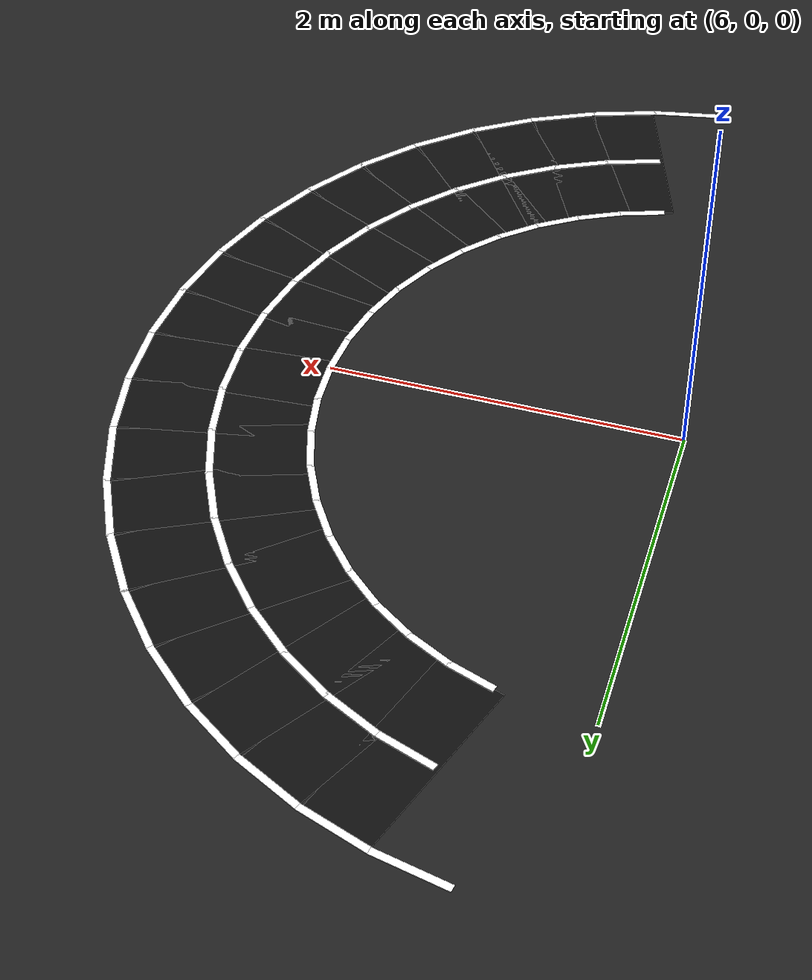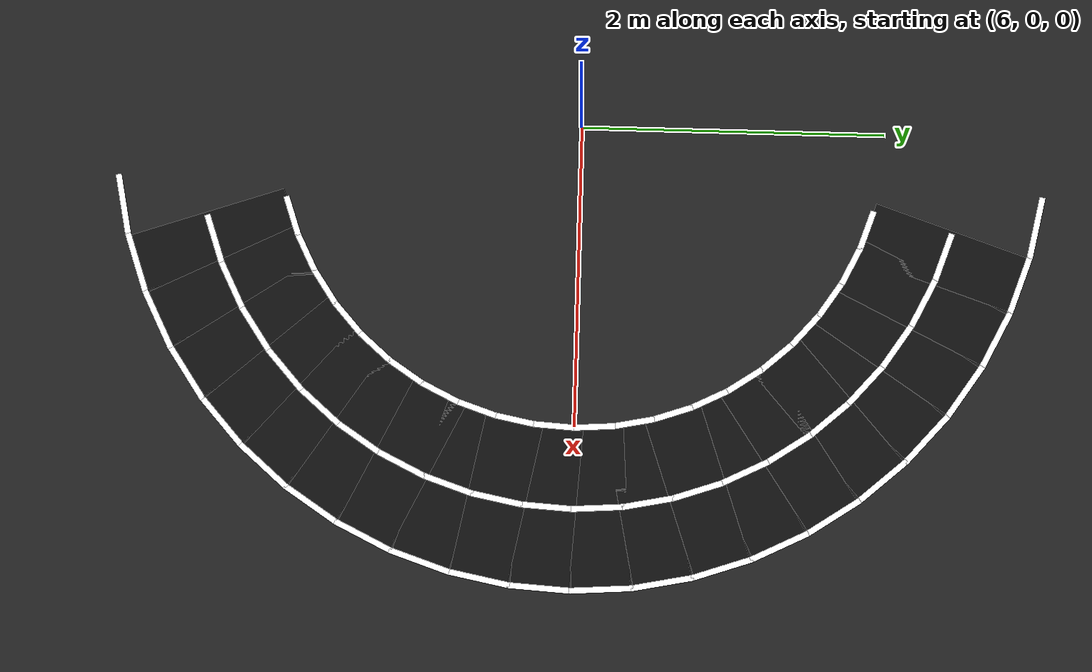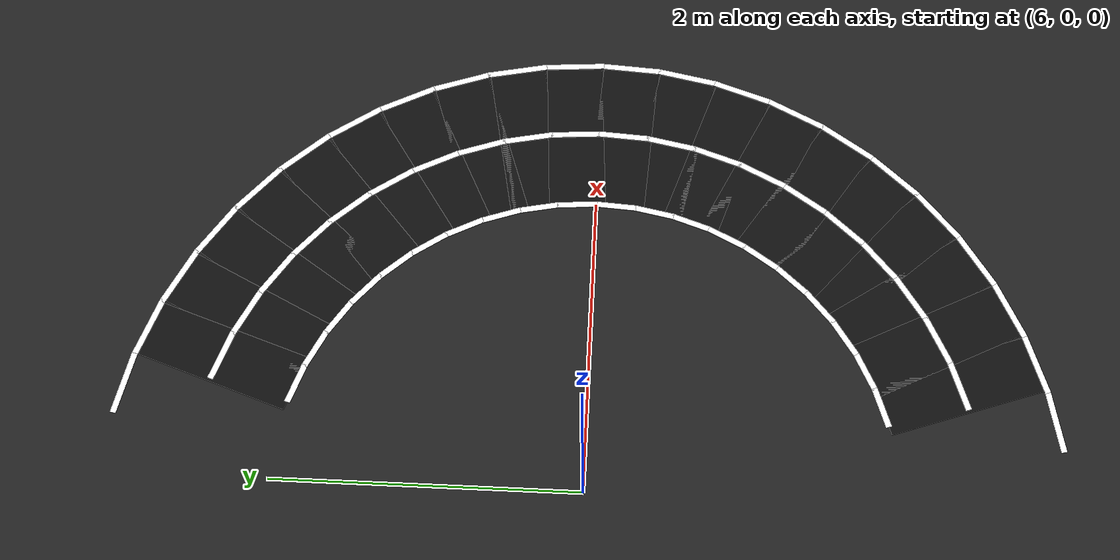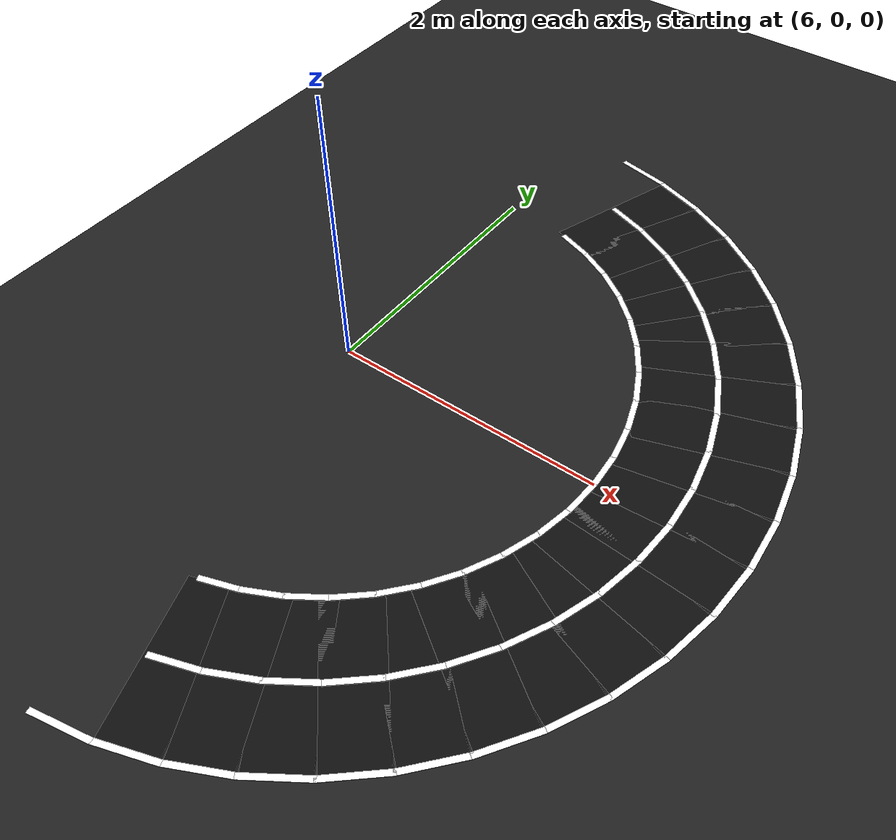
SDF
<sdf version="1.6">
 <world name="oval_lane_world">
  <model name="ground_plane">
   <static>true</static>
   <link name="link">
    <collision name="collision">
     <geometry><plane><normal>0 0 1</normal><size>200 200</size></plane></geometry>
     <surface><friction><ode><mu>1.0</mu><mu2>1.0</mu2></ode></friction></surface>
    </collision>
    <visual name="visual">
     <geometry><plane><normal>0 0 1</normal><size>200 200</size></plane></geometry>
     <material><ambient>0.10 0.10 0.10 1</ambient><diffuse>0.12 0.12 0.12 1</diffuse></material>
    </visual>
   </link>
  </model>
  <model name="cl_r_2_1">
   <static>true</static>
   <pose>6.59854 3.00905 0.00700 0.0 0.0 -0.19635</pose>
   <link name="link">
    <visual name="visual">
     <geometry><box><size>0.41737 0.04000 0.00400</size></box></geometry>
     <material>
      <ambient>1.000 1.000 1.000 1</ambient>
      <diffuse>1.000 1.000 1.000 1</diffuse>
      <specular>0.05 0.05 0.05 1</specular>
     </material>
    </visual>
   </link>
  </model>
  <model name="road_r_2">
   <static>true</static>
   <pose>6.81453 2.39952 0.00250 0.0 0.0 -0.32725</pose>
   <link name="link">
    <visual name="visual">
     <geometry><box><size>0.38284 1.06800 0.00500</size></box></geometry>
     <material>
      <ambient>0.030 0.030 0.030 1</ambient>
      <diffuse>0.050 0.050 0.050 1</diffuse>
      <specular>0.05 0.05 0.05 1</specular>
     </material>
    </visual>
   </link>
  </model>
  <model name="cl_r_0_2">
   <static>true</static>
   <pose>6.64288 1.89386 0.00700 0.0 0.0 -0.32725</pose>
   <link name="link">
    <visual name="visual">
     <geometry><box><size>0.27208 0.04000 0.00400</size></box></geometry>
     <material>
      <ambient>1.000 1.000 1.000 1</ambient>
      <diffuse>1.000 1.000 1.000 1</diffuse>
      <specular>0.05 0.05 0.05 1</specular>
     </material>
    </visual>
   </link>
  </model>
  <model name="cl_r_1_2">
   <static>true</static>
   <pose>6.81453 2.39952 0.00700 0.0 0.0 -0.32725</pose>
   <link name="link">
    <visual name="visual">
     <geometry><box><size>0.34472 0.04000 0.00400</size></box></geometry>
     <material>
      <ambient>1.000 1.000 1.000 1</ambient>
      <diffuse>1.000 1.000 1.000 1</diffuse>
      <specular>0.05 0.05 0.05 1</specular>
     </material>
    </visual>
   </link>
  </model>
  <model name="cl_r_2_2">
   <static>true</static>
   <pose>6.98618 2.90518 0.00700 0.0 0.0 -0.32725</pose>
   <link name="link">
    <visual name="visual">
     <geometry><box><size>0.41737 0.04000 0.00400</size></box></geometry>
     <material>
      <ambient>1.000 1.000 1.000 1</ambient>
      <diffuse>1.000 1.000 1.000 1</diffuse>
      <specular>0.05 0.05 0.05 1</specular>
     </material>
    </visual>
   </link>
  </model>
  <model name="road_r_3">
   <static>true</static>
   <pose>7.12076 2.27268 0.00250 0.0 0.0 -0.45815</pose>
   <link name="link">
    <visual name="visual">
     <geometry><box><size>0.38284 1.06800 0.00500</size></box></geometry>
     <material>
      <ambient>0.030 0.030 0.030 1</ambient>
      <diffuse>0.050 0.050 0.050 1</diffuse>
      <specular>0.05 0.05 0.05 1</specular>
     </material>
    </visual>
   </link>
  </model>
  <model name="cl_r_0_3">
   <static>true</static>
   <pose>6.88458 1.79375 0.00700 0.0 0.0 -0.45815</pose>
   <link name="link">
    <visual name="visual">
     <geometry><box><size>0.27208 0.04000 0.00400</size></box></geometry>
     <material>
      <ambient>1.000 1.000 1.000 1</ambient>
      <diffuse>1.000 1.000 1.000 1</diffuse>
      <specular>0.05 0.05 0.05 1</specular>
     </material>
    </visual>
   </link>
  </model>
  <model name="cl_r_1_3">
   <static>true</static>
   <pose>7.12076 2.27268 0.00700 0.0 0.0 -0.45815</pose>
   <link name="link">
    <visual name="visual">
     <geometry><box><size>0.34472 0.04000 0.00400</size></box></geometry>
     <material>
      <ambient>1.000 1.000 1.000 1</ambient>
      <diffuse>1.000 1.000 1.000 1</diffuse>
      <specular>0.05 0.05 0.05 1</specular>
     </material>
    </visual>
   </link>
  </model>
  <model name="cl_r_2_3">
   <static>true</static>
   <pose>7.35694 2.75161 0.00700 0.0 0.0 -0.45815</pose>
   <link name="link">
    <visual name="visual">
     <geometry><box><size>0.41737 0.04000 0.00400</size></box></geometry>
     <material>
      <ambient>1.000 1.000 1.000 1</ambient>
      <diffuse>1.000 1.000 1.000 1</diffuse>
      <specular>0.05 0.05 0.05 1</specular>
     </material>
    </visual>
   </link>
  </model>
  <model name="road_r_4">
   <static>true</static>
   <pose>7.40781 2.10694 0.00250 0.0 0.0 -0.58905</pose>
   <link name="link">
    <visual name="visual">
     <geometry><box><size>0.38284 1.06800 0.00500</size></box></geometry>
     <material>
      <ambient>0.030 0.030 0.030 1</ambient>
      <diffuse>0.050 0.050 0.050 1</diffuse>
      <specular>0.05 0.05 0.05 1</specular>
     </material>
    </visual>
   </link>
  </model>
  <model name="cl_r_0_4">
   <static>true</static>
   <pose>7.11114 1.66294 0.00700 0.0 0.0 -0.58905</pose>
   <link name="link">
    <visual name="visual">
     <geometry><box><size>0.27208 0.04000 0.00400</size></box></geometry>
     <material>
      <ambient>1.000 1.000 1.000 1</ambient>
      <diffuse>1.000 1.000 1.000 1</diffuse>
      <specular>0.05 0.05 0.05 1</specular>
     </material>
    </visual>
   </link>
  </model>
  <model name="cl_r_1_4">
   <static>true</static>
   <pose>7.40781 2.10694 0.00700 0.0 0.0 -0.58905</pose>
   <link name="link">
    <visual name="visual">
     <geometry><box><size>0.34472 0.04000 0.00400</size></box></geometry>
     <material>
      <ambient>1.000 1.000 1.000 1</ambient>
      <diffuse>1.000 1.000 1.000 1</diffuse>
      <specular>0.05 0.05 0.05 1</specular>
     </material>
    </visual>
   </link>
  </model>
  <model name="cl_r_2_4">
   <static>true</static>
   <pose>7.70449 2.55095 0.00700 0.0 0.0 -0.58905</pose>
   <link name="link">
    <visual name="visual">
     <geometry><box><size>0.41737 0.04000 0.00400</size></box></geometry>
     <material>
      <ambient>1.000 1.000 1.000 1</ambient>
      <diffuse>1.000 1.000 1.000 1</diffuse>
      <specular>0.05 0.05 0.05 1</specular>
     </material>
    </visual>
   </link>
  </model>
  <model name="road_r_5">
   <static>true</static>
   <pose>7.67078 1.90516 0.00250 0.0 0.0 -0.71995</pose>
   <link name="link">
    <visual name="visual">
     <geometry><box><size>0.38284 1.06800 0.00500</size></box></geometry>
     <material>
      <ambient>0.030 0.030 0.030 1</ambient>
      <diffuse>0.050 0.050 0.050 1</diffuse>
      <specular>0.05 0.05 0.05 1</specular>
     </material>
    </visual>
   </link>
  </model>
  <model name="cl_r_0_5">
   <static>true</static>
   <pose>7.31869 1.50368 0.00700 0.0 0.0 -0.71995</pose>
   <link name="link">
    <visual name="visual">
     <geometry><box><size>0.27208 0.04000 0.00400</size></box></geometry>
     <material>
      <ambient>1.000 1.000 1.000 1</ambient>
      <diffuse>1.000 1.000 1.000 1</diffuse>
      <specular>0.05 0.05 0.05 1</specular>
     </material>
    </visual>
   </link>
  </model>
  <model name="cl_r_1_5">
   <static>true</static>
   <pose>7.67078 1.90516 0.00700 0.0 0.0 -0.71995</pose>
   <link name="link">
    <visual name="visual">
     <geometry><box><size>0.34472 0.04000 0.00400</size></box></geometry>
     <material>
      <ambient>1.000 1.000 1.000 1</ambient>
      <diffuse>1.000 1.000 1.000 1</diffuse>
      <specular>0.05 0.05 0.05 1</specular>
     </material>
    </visual>
   </link>
  </model>
  <model name="cl_r_2_5">
   <static>true</static>
   <pose>8.02287 2.30664 0.00700 0.0 0.0 -0.71995</pose>
   <link name="link">
    <visual name="visual">
     <geometry><box><size>0.41737 0.04000 0.00400</size></box></geometry>
     <material>
      <ambient>1.000 1.000 1.000 1</ambient>
      <diffuse>1.000 1.000 1.000 1</diffuse>
      <specular>0.05 0.05 0.05 1</specular>
     </material>
    </visual>
   </link>
  </model>
  <model name="road_r_6">
   <static>true</static>
   <pose>7.90516 1.67078 0.00250 0.0 0.0 -0.85085</pose>
   <link name="link">
    <visual name="visual">
     <geometry><box><size>0.38284 1.06800 0.00500</size></box></geometry>
     <material>
      <ambient>0.030 0.030 0.030 1</ambient>
      <diffuse>0.050 0.050 0.050 1</diffuse>
      <specular>0.05 0.05 0.05 1</specular>
     </material>
    </visual>
   </link>
  </model>
  <model name="cl_r_0_6">
   <static>true</static>
   <pose>7.50368 1.31869 0.00700 0.0 0.0 -0.85085</pose>
   <link name="link">
    <visual name="visual">
     <geometry><box><size>0.27208 0.04000 0.00400</size></box></geometry>
     <material>
      <ambient>1.000 1.000 1.000 1</ambient>
      <diffuse>1.000 1.000 1.000 1</diffuse>
      <specular>0.05 0.05 0.05 1</specular>
     </material>
    </visual>
   </link>
  </model>
  <model name="cl_r_1_6">
   <static>true</static>
   <pose>7.90516 1.67078 0.00700 0.0 0.0 -0.85085</pose>
   <link name="link">
    <visual name="visual">
     <geometry><box><size>0.34472 0.04000 0.00400</size></box></geometry>
     <material>
      <ambient>1.000 1.000 1.000 1</ambient>
      <diffuse>1.000 1.000 1.000 1</diffuse>
      <specular>0.05 0.05 0.05 1</specular>
     </material>
    </visual>
   </link>
  </model>
  <model name="cl_r_2_6">
   <static>true</static>
   <pose>8.30664 2.02287 0.00700 0.0 0.0 -0.85085</pose>
   <link name="link">
    <visual name="visual">
     <geometry><box><size>0.41737 0.04000 0.00400</size></box></geometry>
     <material>
      <ambient>1.000 1.000 1.000 1</ambient>
      <diffuse>1.000 1.000 1.000 1</diffuse>
      <specular>0.05 0.05 0.05 1</specular>
     </material>
    </visual>
   </link>
  </model>
  <model name="road_r_7">
   <static>true</static>
   <pose>8.10694 1.40781 0.00250 0.0 0.0 -0.98175</pose>
   <link name="link">
    <visual name="visual">
     <geometry><box><size>0.38284 1.06800 0.00500</size></box></geometry>
     <material>
      <ambient>0.030 0.030 0.030 1</ambient>
      <diffuse>0.050 0.050 0.050 1</diffuse>
      <specular>0.05 0.05 0.05 1</specular>
     </material>
    </visual>
   </link>
  </model>
  <model name="cl_r_0_7">
   <static>true</static>
   <pose>7.66294 1.11114 0.00700 0.0 0.0 -0.98175</pose>
   <link name="link">
    <visual name="visual">
     <geometry><box><size>0.27208 0.04000 0.00400</size></box></geometry>
     <material>
      <ambient>1.000 1.000 1.000 1</ambient>
      <diffuse>1.000 1.000 1.000 1</diffuse>
      <specular>0.05 0.05 0.05 1</specular>
     </material>
    </visual>
   </link>
  </model>
  <model name="cl_r_1_7">
   <static>true</static>
   <pose>8.10694 1.40781 0.00700 0.0 0.0 -0.98175</pose>
   <link name="link">
    <visual name="visual">
     <geometry><box><size>0.34472 0.04000 0.00400</size></box></geometry>
     <material>
      <ambient>1.000 1.000 1.000 1</ambient>
      <diffuse>1.000 1.000 1.000 1</diffuse>
      <specular>0.05 0.05 0.05 1</specular>
     </material>
    </visual>
   </link>
  </model>
  <model name="cl_r_2_7">
   <static>true</static>
   <pose>8.55095 1.70449 0.00700 0.0 0.0 -0.98175</pose>
   <link name="link">
    <visual name="visual">
     <geometry><box><size>0.41737 0.04000 0.00400</size></box></geometry>
     <material>
      <ambient>1.000 1.000 1.000 1</ambient>
      <diffuse>1.000 1.000 1.000 1</diffuse>
      <specular>0.05 0.05 0.05 1</specular>
     </material>
    </visual>
   </link>
  </model>
  <model name="road_r_8">
   <static>true</static>
   <pose>8.27268 1.12076 0.00250 0.0 0.0 -1.11265</pose>
   <link name="link">
    <visual name="visual">
     <geometry><box><size>0.38284 1.06800 0.00500</size></box></geometry>
     <material>
      <ambient>0.030 0.030 0.030 1</ambient>
      <diffuse>0.050 0.050 0.050 1</diffuse>
      <specular>0.05 0.05 0.05 1</specular>
     </material>
    </visual>
   </link>
  </model>
  <model name="cl_r_0_8">
   <static>true</static>
   <pose>7.79375 0.88458 0.00700 0.0 0.0 -1.11265</pose>
   <link name="link">
    <visual name="visual">
     <geometry><box><size>0.27208 0.04000 0.00400</size></box></geometry>
     <material>
      <ambient>1.000 1.000 1.000 1</ambient>
      <diffuse>1.000 1.000 1.000 1</diffuse>
      <specular>0.05 0.05 0.05 1</specular>
     </material>
    </visual>
   </link>
  </model>
  <model name="cl_r_1_8">
   <static>true</static>
   <pose>8.27268 1.12076 0.00700 0.0 0.0 -1.11265</pose>
   <link name="link">
    <visual name="visual">
     <geometry><box><size>0.34472 0.04000 0.00400</size></box></geometry>
     <material>
      <ambient>1.000 1.000 1.000 1</ambient>
      <diffuse>1.000 1.000 1.000 1</diffuse>
      <specular>0.05 0.05 0.05 1</specular>
     </material>
    </visual>
   </link>
  </model>
  <model name="cl_r_2_8">
   <static>true</static>
   <pose>8.75161 1.35694 0.00700 0.0 0.0 -1.11265</pose>
   <link name="link">
    <visual name="visual">
     <geometry><box><size>0.41737 0.04000 0.00400</size></box></geometry>
     <material>
      <ambient>1.000 1.000 1.000 1</ambient>
      <diffuse>1.000 1.000 1.000 1</diffuse>
      <specular>0.05 0.05 0.05 1</specular>
     </material>
    </visual>
   </link>
  </model>
  <model name="road_r_9">
   <static>true</static>
   <pose>8.39952 0.81453 0.00250 0.0 0.0 -1.24355</pose>
   <link name="link">
    <visual name="visual">
     <geometry><box><size>0.38284 1.06800 0.00500</size></box></geometry>
     <material>
      <ambient>0.030 0.030 0.030 1</ambient>
      <diffuse>0.050 0.050 0.050 1</diffuse>
      <specular>0.05 0.05 0.05 1</specular>
     </material>
    </visual>
   </link>
  </model>
  <model name="cl_r_0_9">
   <static>true</static>
   <pose>7.89386 0.64288 0.00700 0.0 0.0 -1.24355</pose>
   <link name="link">
    <visual name="visual">
     <geometry><box><size>0.27208 0.04000 0.00400</size></box></geometry>
     <material>
      <ambient>1.000 1.000 1.000 1</ambient>
      <diffuse>1.000 1.000 1.000 1</diffuse>
      <specular>0.05 0.05 0.05 1</specular>
     </material>
    </visual>
   </link>
  </model>
  <model name="cl_r_1_9">
   <static>true</static>
   <pose>8.39952 0.81453 0.00700 0.0 0.0 -1.24355</pose>
   <link name="link">
    <visual name="visual">
     <geometry><box><size>0.34472 0.04000 0.00400</size></box></geometry>
     <material>
      <ambient>1.000 1.000 1.000 1</ambient>
      <diffuse>1.000 1.000 1.000 1</diffuse>
      <specular>0.05 0.05 0.05 1</specular>
     </material>
    </visual>
   </link>
  </model>
  <model name="cl_r_2_9">
   <static>true</static>
   <pose>8.90518 0.98618 0.00700 0.0 0.0 -1.24355</pose>
   <link name="link">
    <visual name="visual">
     <geometry><box><size>0.41737 0.04000 0.00400</size></box></geometry>
     <material>
      <ambient>1.000 1.000 1.000 1</ambient>
      <diffuse>1.000 1.000 1.000 1</diffuse>
      <specular>0.05 0.05 0.05 1</specular>
     </material>
    </visual>
   </link>
  </model>
  <model name="road_r_10">
   <static>true</static>
   <pose>8.48531 0.49436 0.00250 0.0 0.0 -1.37445</pose>
   <link name="link">
    <visual name="visual">
     <geometry><box><size>0.38284 1.06800 0.00500</size></box></geometry>
     <material>
      <ambient>0.030 0.030 0.030 1</ambient>
      <diffuse>0.050 0.050 0.050 1</diffuse>
      <specular>0.05 0.05 0.05 1</specular>
     </material>
    </visual>
   </link>
  </model>
  <model name="cl_r_0_10">
   <static>true</static>
   <pose>7.96157 0.39018 0.00700 0.0 0.0 -1.37445</pose>
   <link name="link">
    <visual name="visual">
     <geometry><box><size>0.27208 0.04000 0.00400</size></box></geometry>
     <material>
      <ambient>1.000 1.000 1.000 1</ambient>
      <diffuse>1.000 1.000 1.000 1</diffuse>
      <specular>0.05 0.05 0.05 1</specular>
     </material>
    </visual>
   </link>
  </model>
  <model name="cl_r_1_10">
   <static>true</static>
   <pose>8.48531 0.49436 0.00700 0.0 0.0 -1.37445</pose>
   <link name="link">
    <visual name="visual">
     <geometry><box><size>0.34472 0.04000 0.00400</size></box></geometry>
     <material>
      <ambient>1.000 1.000 1.000 1</ambient>
      <diffuse>1.000 1.000 1.000 1</diffuse>
      <specular>0.05 0.05 0.05 1</specular>
     </material>
    </visual>
   </link>
  </model>
  <model name="cl_r_2_10">
   <static>true</static>
   <pose>9.00905 0.59854 0.00700 0.0 0.0 -1.37445</pose>
   <link name="link">
    <visual name="visual">
     <geometry><box><size>0.41737 0.04000 0.00400</size></box></geometry>
     <material>
      <ambient>1.000 1.000 1.000 1</ambient>
      <diffuse>1.000 1.000 1.000 1</diffuse>
      <specular>0.05 0.05 0.05 1</specular>
     </material>
    </visual>
   </link>
  </model>
  <model name="road_r_11">
   <static>true</static>
   <pose>8.52857 0.16573 0.00250 0.0 0.0 -1.50535</pose>
   <link name="link">
    <visual name="visual">
     <geometry><box><size>0.38284 1.06800 0.00500</size></box></geometry>
     <material>
      <ambient>0.030 0.030 0.030 1</ambient>
      <diffuse>0.050 0.050 0.050 1</diffuse>
      <specular>0.05 0.05 0.05 1</specular>
     </material>
    </visual>
   </link>
  </model>
  <model name="cl_r_0_11">
   <static>true</static>
   <pose>7.99572 0.13081 0.00700 0.0 0.0 -1.50535</pose>
   <link name="link">
    <visual name="visual">
     <geometry><box><size>0.27208 0.04000 0.00400</size></box></geometry>
     <material>
      <ambient>1.000 1.000 1.000 1</ambient>
      <diffuse>1.000 1.000 1.000 1</diffuse>
      <specular>0.05 0.05 0.05 1</specular>
     </material>
    </visual>
   </link>
  </model>
  <model name="cl_r_1_11">
   <static>true</static>
   <pose>8.52857 0.16573 0.00700 0.0 0.0 -1.50535</pose>
   <link name="link">
    <visual name="visual">
     <geometry><box><size>0.34472 0.04000 0.00400</size></box></geometry>
     <material>
      <ambient>1.000 1.000 1.000 1</ambient>
      <diffuse>1.000 1.000 1.000 1</diffuse>
      <specular>0.05 0.05 0.05 1</specular>
     </material>
    </visual>
   </link>
  </model>
  <model name="cl_r_2_11">
   <static>true</static>
   <pose>9.06143 0.20066 0.00700 0.0 0.0 -1.50535</pose>
   <link name="link">
    <visual name="visual">
     <geometry><box><size>0.41737 0.04000 0.00400</size></box></geometry>
     <material>
      <ambient>1.000 1.000 1.000 1</ambient>
      <diffuse>1.000 1.000 1.000 1</diffuse>
      <specular>0.05 0.05 0.05 1</specular>
     </material>
    </visual>
   </link>
  </model>
  <model name="road_r_12">
   <static>true</static>
   <pose>8.52857 -0.16573 0.00250 0.0 0.0 -1.63625</pose>
   <link name="link">
    <visual name="visual">
     <geometry><box><size>0.38284 1.06800 0.00500</size></box></geometry>
     <material>
      <ambient>0.030 0.030 0.030 1</ambient>
      <diffuse>0.050 0.050 0.050 1</diffuse>
      <specular>0.05 0.05 0.05 1</specular>
     </material>
    </visual>
   </link>
  </model>
  <model name="cl_r_0_12">
   <static>true</static>
   <pose>7.99572 -0.13081 0.00700 0.0 0.0 -1.63625</pose>
   <link name="link">
    <visual name="visual">
     <geometry><box><size>0.27208 0.04000 0.00400</size></box></geometry>
     <material>
      <ambient>1.000 1.000 1.000 1</ambient>
      <diffuse>1.000 1.000 1.000 1</diffuse>
      <specular>0.05 0.05 0.05 1</specular>
     </material>
    </visual>
   </link>
  </model>
  <model name="cl_r_1_12">
   <static>true</static>
   <pose>8.52857 -0.16573 0.00700 0.0 0.0 -1.63625</pose>
   <link name="link">
    <visual name="visual">
     <geometry><box><size>0.34472 0.04000 0.00400</size></box></geometry>
     <material>
      <ambient>1.000 1.000 1.000 1</ambient>
      <diffuse>1.000 1.000 1.000 1</diffuse>
      <specular>0.05 0.05 0.05 1</specular>
     </material>
    </visual>
   </link>
  </model>
  <model name="cl_r_2_12">
   <static>true</static>
   <pose>9.06143 -0.20066 0.00700 0.0 0.0 -1.63625</pose>
   <link name="link">
    <visual name="visual">
     <geometry><box><size>0.41737 0.04000 0.00400</size></box></geometry>
     <material>
      <ambient>1.000 1.000 1.000 1</ambient>
      <diffuse>1.000 1.000 1.000 1</diffuse>
      <specular>0.05 0.05 0.05 1</specular>
     </material>
    </visual>
   </link>
  </model>
  <model name="road_r_13">
   <static>true</static>
   <pose>8.48531 -0.49436 0.00250 0.0 0.0 -1.76715</pose>
   <link name="link">
    <visual name="visual">
     <geometry><box><size>0.38284 1.06800 0.00500</size></box></geometry>
     <material>
      <ambient>0.030 0.030 0.030 1</ambient>
      <diffuse>0.050 0.050 0.050 1</diffuse>
      <specular>0.05 0.05 0.05 1</specular>
     </material>
    </visual>
   </link>
  </model>
  <model name="cl_r_0_13">
   <static>true</static>
   <pose>7.96157 -0.39018 0.00700 0.0 0.0 -1.76715</pose>
   <link name="link">
    <visual name="visual">
     <geometry><box><size>0.27208 0.04000 0.00400</size></box></geometry>
     <material>
      <ambient>1.000 1.000 1.000 1</ambient>
      <diffuse>1.000 1.000 1.000 1</diffuse>
      <specular>0.05 0.05 0.05 1</specular>
     </material>
    </visual>
   </link>
  </model>
  <model name="cl_r_1_13">
   <static>true</static>
   <pose>8.48531 -0.49436 0.00700 0.0 0.0 -1.76715</pose>
   <link name="link">
    <visual name="visual">
     <geometry><box><size>0.34472 0.04000 0.00400</size></box></geometry>
     <material>
      <ambient>1.000 1.000 1.000 1</ambient>
      <diffuse>1.000 1.000 1.000 1</diffuse>
      <specular>0.05 0.05 0.05 1</specular>
     </material>
    </visual>
   </link>
  </model>
  <model name="cl_r_2_13">
   <static>true</static>
   <pose>9.00905 -0.59854 0.00700 0.0 0.0 -1.76715</pose>
   <link name="link">
    <visual name="visual">
     <geometry><box><size>0.41737 0.04000 0.00400</size></box></geometry>
     <material>
      <ambient>1.000 1.000 1.000 1</ambient>
      <diffuse>1.000 1.000 1.000 1</diffuse>
      <specular>0.05 0.05 0.05 1</specular>
     </material>
    </visual>
   </link>
  </model>
  <model name="road_r_14">
   <static>true</static>
   <pose>8.39952 -0.81453 0.00250 0.0 0.0 -1.89805</pose>
   <link name="link">
    <visual name="visual">
     <geometry><box><size>0.38284 1.06800 0.00500</size></box></geometry>
     <material>
      <ambient>0.030 0.030 0.030 1</ambient>
      <diffuse>0.050 0.050 0.050 1</diffuse>
      <specular>0.05 0.05 0.05 1</specular>
     </material>
    </visual>
   </link>
  </model>
  <model name="cl_r_0_14">
   <static>true</static>
   <pose>7.89386 -0.64288 0.00700 0.0 0.0 -1.89805</pose>
   <link name="link">
    <visual name="visual">
     <geometry><box><size>0.27208 0.04000 0.00400</size></box></geometry>
     <material>
      <ambient>1.000 1.000 1.000 1</ambient>
      <diffuse>1.000 1.000 1.000 1</diffuse>
      <specular>0.05 0.05 0.05 1</specular>
     </material>
    </visual>
   </link>
  </model>
  <model name="cl_r_1_14">
   <static>true</static>
   <pose>8.39952 -0.81453 0.00700 0.0 0.0 -1.89805</pose>
   <link name="link">
    <visual name="visual">
     <geometry><box><size>0.34472 0.04000 0.00400</size></box></geometry>
     <material>
      <ambient>1.000 1.000 1.000 1</ambient>
      <diffuse>1.000 1.000 1.000 1</diffuse>
      <specular>0.05 0.05 0.05 1</specular>
     </material>
    </visual>
   </link>
  </model>
  <model name="cl_r_2_14">
   <static>true</static>
   <pose>8.90518 -0.98618 0.00700 0.0 0.0 -1.89805</pose>
   <link name="link">
    <visual name="visual">
     <geometry><box><size>0.41737 0.04000 0.00400</size></box></geometry>
     <material>
      <ambient>1.000 1.000 1.000 1</ambient>
      <diffuse>1.000 1.000 1.000 1</diffuse>
      <specular>0.05 0.05 0.05 1</specular>
     </material>
    </visual>
   </link>
  </model>
  <model name="road_r_15">
   <static>true</static>
   <pose>8.27268 -1.12076 0.00250 0.0 0.0 -2.02895</pose>
   <link name="link">
    <visual name="visual">
     <geometry><box><size>0.38284 1.06800 0.00500</size></box></geometry>
     <material>
      <ambient>0.030 0.030 0.030 1</ambient>
      <diffuse>0.050 0.050 0.050 1</diffuse>
      <specular>0.05 0.05 0.05 1</specular>
     </material>
    </visual>
   </link>
  </model>
  <model name="cl_r_0_15">
   <static>true</static>
   <pose>7.79375 -0.88458 0.00700 0.0 0.0 -2.02895</pose>
   <link name="link">
    <visual name="visual">
     <geometry><box><size>0.27208 0.04000 0.00400</size></box></geometry>
     <material>
      <ambient>1.000 1.000 1.000 1</ambient>
      <diffuse>1.000 1.000 1.000 1</diffuse>
      <specular>0.05 0.05 0.05 1</specular>
     </material>
    </visual>
   </link>
  </model>
  <model name="cl_r_1_15">
   <static>true</static>
   <pose>8.27268 -1.12076 0.00700 0.0 0.0 -2.02895</pose>
   <link name="link">
    <visual name="visual">
     <geometry><box><size>0.34472 0.04000 0.00400</size></box></geometry>
     <material>
      <ambient>1.000 1.000 1.000 1</ambient>
      <diffuse>1.000 1.000 1.000 1</diffuse>
      <specular>0.05 0.05 0.05 1</specular>
     </material>
    </visual>
   </link>
  </model>
  <model name="cl_r_2_15">
   <static>true</static>
   <pose>8.75161 -1.35694 0.00700 0.0 0.0 -2.02895</pose>
   <link name="link">
    <visual name="visual">
     <geometry><box><size>0.41737 0.04000 0.00400</size></box></geometry>
     <material>
      <ambient>1.000 1.000 1.000 1</ambient>
      <diffuse>1.000 1.000 1.000 1</diffuse>
      <specular>0.05 0.05 0.05 1</specular>
     </material>
    </visual>
   </link>
  </model>
  <model name="road_r_16">
   <static>true</static>
   <pose>8.10694 -1.40781 0.00250 0.0 0.0 -2.15984</pose>
   <link name="link">
    <visual name="visual">
     <geometry><box><size>0.38284 1.06800 0.00500</size></box></geometry>
     <material>
      <ambient>0.030 0.030 0.030 1</ambient>
      <diffuse>0.050 0.050 0.050 1</diffuse>
      <specular>0.05 0.05 0.05 1</specular>
     </material>
    </visual>
   </link>
  </model>
  <model name="cl_r_0_16">
   <static>true</static>
   <pose>7.66294 -1.11114 0.00700 0.0 0.0 -2.15984</pose>
   <link name="link">
    <visual name="visual">
     <geometry><box><size>0.27208 0.04000 0.00400</size></box></geometry>
     <material>
      <ambient>1.000 1.000 1.000 1</ambient>
      <diffuse>1.000 1.000 1.000 1</diffuse>
      <specular>0.05 0.05 0.05 1</specular>
     </material>
    </visual>
   </link>
  </model>
  <model name="cl_r_1_16">
   <static>true</static>
   <pose>8.10694 -1.40781 0.00700 0.0 0.0 -2.15984</pose>
   <link name="link">
    <visual name="visual">
     <geometry><box><size>0.34472 0.04000 0.00400</size></box></geometry>
     <material>
      <ambient>1.000 1.000 1.000 1</ambient>
      <diffuse>1.000 1.000 1.000 1</diffuse>
      <specular>0.05 0.05 0.05 1</specular>
     </material>
    </visual>
   </link>
  </model>
  <model name="cl_r_2_16">
   <static>true</static>
   <pose>8.55095 -1.70449 0.00700 0.0 0.0 -2.15984</pose>
   <link name="link">
    <visual name="visual">
     <geometry><box><size>0.41737 0.04000 0.00400</size></box></geometry>
     <material>
      <ambient>1.000 1.000 1.000 1</ambient>
      <diffuse>1.000 1.000 1.000 1</diffuse>
      <specular>0.05 0.05 0.05 1</specular>
     </material>
    </visual>
   </link>
  </model>
  <model name="road_r_17">
   <static>true</static>
   <pose>7.90516 -1.67078 0.00250 0.0 0.0 -2.29074</pose>
   <link name="link">
    <visual name="visual">
     <geometry><box><size>0.38284 1.06800 0.00500</size></box></geometry>
     <material>
      <ambient>0.030 0.030 0.030 1</ambient>
      <diffuse>0.050 0.050 0.050 1</diffuse>
      <specular>0.05 0.05 0.05 1</specular>
     </material>
    </visual>
   </link>
  </model>
  <model name="cl_r_0_17">
   <static>true</static>
   <pose>7.50368 -1.31869 0.00700 0.0 0.0 -2.29074</pose>
   <link name="link">
    <visual name="visual">
     <geometry><box><size>0.27208 0.04000 0.00400</size></box></geometry>
     <material>
      <ambient>1.000 1.000 1.000 1</ambient>
      <diffuse>1.000 1.000 1.000 1</diffuse>
      <specular>0.05 0.05 0.05 1</specular>
     </material>
    </visual>
   </link>
  </model>
  <model name="cl_r_1_17">
   <static>true</static>
   <pose>7.90516 -1.67078 0.00700 0.0 0.0 -2.29074</pose>
   <link name="link">
    <visual name="visual">
     <geometry><box><size>0.34472 0.04000 0.00400</size></box></geometry>
     <material>
      <ambient>1.000 1.000 1.000 1</ambient>
      <diffuse>1.000 1.000 1.000 1</diffuse>
      <specular>0.05 0.05 0.05 1</specular>
     </material>
    </visual>
   </link>
  </model>
  <model name="cl_r_2_17">
   <static>true</static>
   <pose>8.30664 -2.02287 0.00700 0.0 0.0 -2.29074</pose>
   <link name="link">
    <visual name="visual">
     <geometry><box><size>0.41737 0.04000 0.00400</size></box></geometry>
     <material>
      <ambient>1.000 1.000 1.000 1</ambient>
      <diffuse>1.000 1.000 1.000 1</diffuse>
      <specular>0.05 0.05 0.05 1</specular>
     </material>
    </visual>
   </link>
  </model>
  <model name="road_r_18">
   <static>true</static>
   <pose>7.67078 -1.90516 0.00250 0.0 0.0 -2.42164</pose>
   <link name="link">
    <visual name="visual">
     <geometry><box><size>0.38284 1.06800 0.00500</size></box></geometry>
     <material>
      <ambient>0.030 0.030 0.030 1</ambient>
      <diffuse>0.050 0.050 0.050 1</diffuse>
      <specular>0.05 0.05 0.05 1</specular>
     </material>
    </visual>
   </link>
  </model>
  <model name="cl_r_0_18">
   <static>true</static>
   <pose>7.31869 -1.50368 0.00700 0.0 0.0 -2.42164</pose>
   <link name="link">
    <visual name="visual">
     <geometry><box><size>0.27208 0.04000 0.00400</size></box></geometry>
     <material>
      <ambient>1.000 1.000 1.000 1</ambient>
      <diffuse>1.000 1.000 1.000 1</diffuse>
      <specular>0.05 0.05 0.05 1</specular>
     </material>
    </visual>
   </link>
  </model>
  <model name="cl_r_1_18">
   <static>true</static>
   <pose>7.67078 -1.90516 0.00700 0.0 0.0 -2.42164</pose>
   <link name="link">
    <visual name="visual">
     <geometry><box><size>0.34472 0.04000 0.00400</size></box></geometry>
     <material>
      <ambient>1.000 1.000 1.000 1</ambient>
      <diffuse>1.000 1.000 1.000 1</diffuse>
      <specular>0.05 0.05 0.05 1</specular>
     </material>
    </visual>
   </link>
  </model>
  <model name="cl_r_2_18">
   <static>true</static>
   <pose>8.02287 -2.30664 0.00700 0.0 0.0 -2.42164</pose>
   <link name="link">
    <visual name="visual">
     <geometry><box><size>0.41737 0.04000 0.00400</size></box></geometry>
     <material>
      <ambient>1.000 1.000 1.000 1</ambient>
      <diffuse>1.000 1.000 1.000 1</diffuse>
      <specular>0.05 0.05 0.05 1</specular>
     </material>
    </visual>
   </link>
  </model>
  <model name="road_r_19">
   <static>true</static>
   <pose>7.40781 -2.10694 0.00250 0.0 0.0 -2.55254</pose>
   <link name="link">
    <visual name="visual">
     <geometry><box><size>0.38284 1.06800 0.00500</size></box></geometry>
     <material>
      <ambient>0.030 0.030 0.030 1</ambient>
      <diffuse>0.050 0.050 0.050 1</diffuse>
      <specular>0.05 0.05 0.05 1</specular>
     </material>
    </visual>
   </link>
  </model>
  <model name="cl_r_0_19">
   <static>true</static>
   <pose>7.11114 -1.66294 0.00700 0.0 0.0 -2.55254</pose>
   <link name="link">
    <visual name="visual">
     <geometry><box><size>0.27208 0.04000 0.00400</size></box></geometry>
     <material>
      <ambient>1.000 1.000 1.000 1</ambient>
      <diffuse>1.000 1.000 1.000 1</diffuse>
      <specular>0.05 0.05 0.05 1</specular>
     </material>
    </visual>
   </link>
  </model>
  <model name="cl_r_1_19">
   <static>true</static>
   <pose>7.40781 -2.10694 0.00700 0.0 0.0 -2.55254</pose>
   <link name="link">
    <visual name="visual">
     <geometry><box><size>0.34472 0.04000 0.00400</size></box></geometry>
     <material>
      <ambient>1.000 1.000 1.000 1</ambient>
      <diffuse>1.000 1.000 1.000 1</diffuse>
      <specular>0.05 0.05 0.05 1</specular>
     </material>
    </visual>
   </link>
  </model>
  <model name="cl_r_2_19">
   <static>true</static>
   <pose>7.70449 -2.55095 0.00700 0.0 0.0 -2.55254</pose>
   <link name="link">
    <visual name="visual">
     <geometry><box><size>0.41737 0.04000 0.00400</size></box></geometry>
     <material>
      <ambient>1.000 1.000 1.000 1</ambient>
      <diffuse>1.000 1.000 1.000 1</diffuse>
      <specular>0.05 0.05 0.05 1</specular>
     </material>
    </visual>
   </link>
  </model>
  <model name="road_r_20">
   <static>true</static>
   <pose>7.12076 -2.27268 0.00250 0.0 0.0 -2.68344</pose>
   <link name="link">
    <visual name="visual">
     <geometry><box><size>0.38284 1.06800 0.00500</size></box></geometry>
     <material>
      <ambient>0.030 0.030 0.030 1</ambient>
      <diffuse>0.050 0.050 0.050 1</diffuse>
      <specular>0.05 0.05 0.05 1</specular>
     </material>
    </visual>
   </link>
  </model>
  <model name="cl_r_0_20">
   <static>true</static>
   <pose>6.88458 -1.79375 0.00700 0.0 0.0 -2.68344</pose>
   <link name="link">
    <visual name="visual">
     <geometry><box><size>0.27208 0.04000 0.00400</size></box></geometry>
     <material>
      <ambient>1.000 1.000 1.000 1</ambient>
      <diffuse>1.000 1.000 1.000 1</diffuse>
      <specular>0.05 0.05 0.05 1</specular>
     </material>
    </visual>
   </link>
  </model>
  <model name="cl_r_1_20">
   <static>true</static>
   <pose>7.12076 -2.27268 0.00700 0.0 0.0 -2.68344</pose>
   <link name="link">
    <visual name="visual">
     <geometry><box><size>0.34472 0.04000 0.00400</size></box></geometry>
     <material>
      <ambient>1.000 1.000 1.000 1</ambient>
      <diffuse>1.000 1.000 1.000 1</diffuse>
      <specular>0.05 0.05 0.05 1</specular>
     </material>
    </visual>
   </link>
  </model>
  <model name="cl_r_2_20">
   <static>true</static>
   <pose>7.35694 -2.75161 0.00700 0.0 0.0 -2.68344</pose>
   <link name="link">
    <visual name="visual">
     <geometry><box><size>0.41737 0.04000 0.00400</size></box></geometry>
     <material>
      <ambient>1.000 1.000 1.000 1</ambient>
      <diffuse>1.000 1.000 1.000 1</diffuse>
      <specular>0.05 0.05 0.05 1</specular>
     </material>
    </visual>
   </link>
  </model>
  <model name="road_r_21">
   <static>true</static>
   <pose>6.81453 -2.39952 0.00250 0.0 0.0 -2.81434</pose>
   <link name="link">
    <visual name="visual">
     <geometry><box><size>0.38284 1.06800 0.00500</size></box></geometry>
     <material>
      <ambient>0.030 0.030 0.030 1</ambient>
      <diffuse>0.050 0.050 0.050 1</diffuse>
      <specular>0.05 0.05 0.05 1</specular>
     </material>
    </visual>
   </link>
  </model>
  <model name="cl_r_0_21">
   <static>true</static>
   <pose>6.64288 -1.89386 0.00700 0.0 0.0 -2.81434</pose>
   <link name="link">
    <visual name="visual">
     <geometry><box><size>0.27208 0.04000 0.00400</size></box></geometry>
     <material>
      <ambient>1.000 1.000 1.000 1</ambient>
      <diffuse>1.000 1.000 1.000 1</diffuse>
      <specular>0.05 0.05 0.05 1</specular>
     </material>
    </visual>
   </link>
  </model>
  <model name="cl_r_1_21">
   <static>true</static>
   <pose>6.81453 -2.39952 0.00700 0.0 0.0 -2.81434</pose>
   <link name="link">
    <visual name="visual">
     <geometry><box><size>0.34472 0.04000 0.00400</size></box></geometry>
     <material>
      <ambient>1.000 1.000 1.000 1</ambient>
      <diffuse>1.000 1.000 1.000 1</diffuse>
      <specular>0.05 0.05 0.05 1</specular>
     </material>
    </visual>
   </link>
  </model>
  <model name="cl_r_2_21">
   <static>true</static>
   <pose>6.98618 -2.90518 0.00700 0.0 0.0 -2.81434</pose>
   <link name="link">
    <visual name="visual">
     <geometry><box><size>0.41737 0.04000 0.00400</size></box></geometry>
     <material>
      <ambient>1.000 1.000 1.000 1</ambient>
      <diffuse>1.000 1.000 1.000 1</diffuse>
      <specular>0.05 0.05 0.05 1</specular>
     </material>
    </visual>
   </link>
  </model>
  <model name="cl_r_2_22">
   <static>true</static>
   <pose>6.59854 -3.00905 0.00700 0.0 0.0 -2.94524</pose>
   <link name="link">
    <visual name="visual">
     <geometry><box><size>0.41737 0.04000 0.00400</size></box></geometry>
     <material>
      <ambient>1.000 1.000 1.000 1</ambient>
      <diffuse>1.000 1.000 1.000 1</diffuse>
      <specular>0.05 0.05 0.05 1</specular>
     </material>
    </visual>
   </link>
  </model>
 </world>
</sdf>
